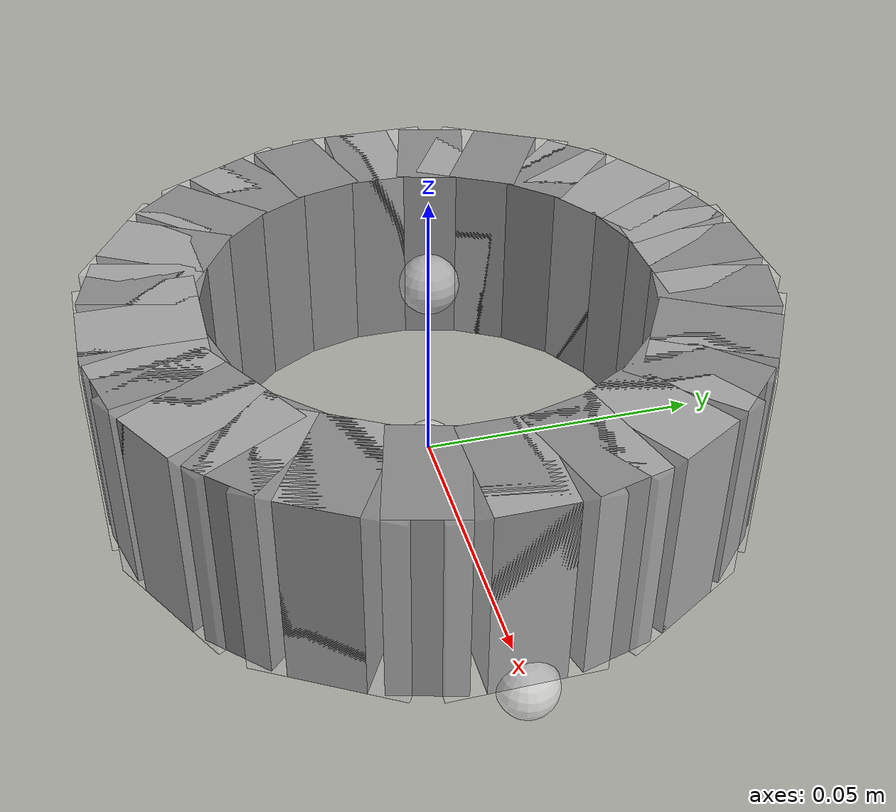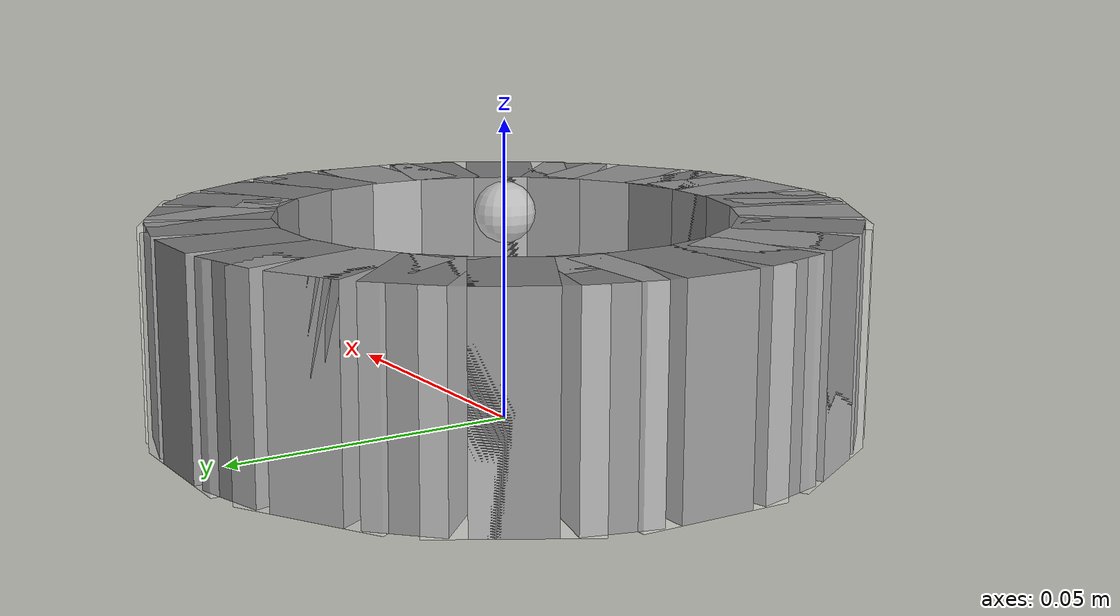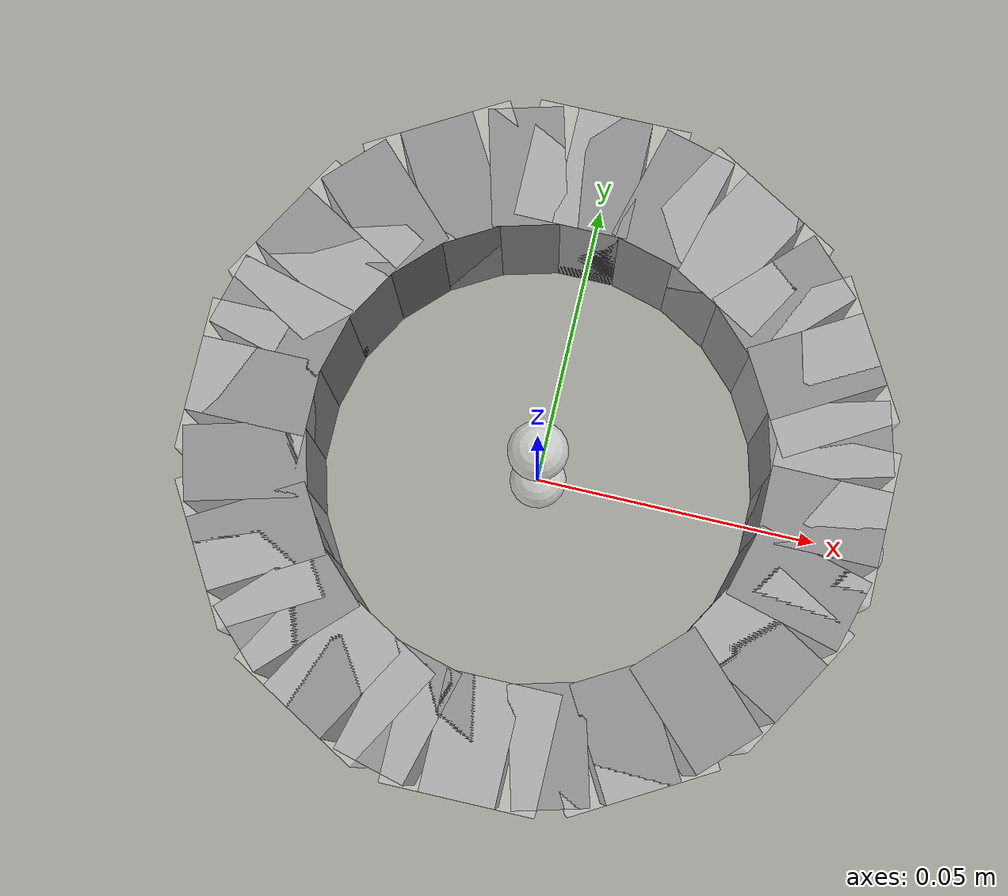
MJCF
<mujoco model="tape_roll">
  <default>
    <default class="visual">
      <geom group="1" contype="0" conaffinity="0" density="0"/>
    </default>
    <default class="collision">
      <geom group="0" density="350" solimp="0.95 0.98 0.001" solref="0.004 1" rgba="1 1 1 0.25" friction="1.2 0.01 0.001"/>
    </default>
    <default class="spawn">
      <geom group="1" rgba="1 1 1 0" contype="0" conaffinity="0" density="0" mass="0"/>
    </default>
  </default>
  <asset>
    <material name="grey_mat" rgba="0.55 0.55 0.55 1" specular="0.35" shininess="0.2"/>
  </asset>
  <!-- Hollow cylindrical tape roll: outer dia 11.5 cm, inner dia 7.5 cm, height 3.5 cm -->
  <worldbody>
    <body>
      <body name="object">
        <geom class="visual" type="box" size="0.01000 0.00625 0.01750" pos="0.04750 0.00000 0.01750" quat="1.000000 0 0 0.000000" material="grey_mat"/>
        <geom class="visual" type="box" size="0.01000 0.00625 0.01750" pos="0.04588 0.01229 0.01750" quat="0.991445 0 0 0.130526" material="grey_mat"/>
        <geom class="visual" type="box" size="0.01000 0.00625 0.01750" pos="0.04114 0.02375 0.01750" quat="0.965926 0 0 0.258819" material="grey_mat"/>
        <geom class="visual" type="box" size="0.01000 0.00625 0.01750" pos="0.03359 0.03359 0.01750" quat="0.923880 0 0 0.382683" material="grey_mat"/>
        <geom class="visual" type="box" size="0.01000 0.00625 0.01750" pos="0.02375 0.04114 0.01750" quat="0.866025 0 0 0.500000" material="grey_mat"/>
        <geom class="visual" type="box" size="0.01000 0.00625 0.01750" pos="0.01229 0.04588 0.01750" quat="0.793353 0 0 0.608761" material="grey_mat"/>
        <geom class="visual" type="box" size="0.01000 0.00625 0.01750" pos="0.00000 0.04750 0.01750" quat="0.707107 0 0 0.707107" material="grey_mat"/>
        <geom class="visual" type="box" size="0.01000 0.00625 0.01750" pos="-0.01229 0.04588 0.01750" quat="0.608761 0 0 0.793353" material="grey_mat"/>
        <geom class="visual" type="box" size="0.01000 0.00625 0.01750" pos="-0.02375 0.04114 0.01750" quat="0.500000 0 0 0.866025" material="grey_mat"/>
        <geom class="visual" type="box" size="0.01000 0.00625 0.01750" pos="-0.03359 0.03359 0.01750" quat="0.382683 0 0 0.923880" material="grey_mat"/>
        <geom class="visual" type="box" size="0.01000 0.00625 0.01750" pos="-0.04114 0.02375 0.01750" quat="0.258819 0 0 0.965926" material="grey_mat"/>
        <geom class="visual" type="box" size="0.01000 0.00625 0.01750" pos="-0.04588 0.01229 0.01750" quat="0.130526 0 0 0.991445" material="grey_mat"/>
        <geom class="visual" type="box" size="0.01000 0.00625 0.01750" pos="-0.04750 0.00000 0.01750" quat="0.000000 0 0 1.000000" material="grey_mat"/>
        <geom class="visual" type="box" size="0.01000 0.00625 0.01750" pos="-0.04588 -0.01229 0.01750" quat="-0.130526 0 0 0.991445" material="grey_mat"/>
        <geom class="visual" type="box" size="0.01000 0.00625 0.01750" pos="-0.04114 -0.02375 0.01750" quat="-0.258819 0 0 0.965926" material="grey_mat"/>
        <geom class="visual" type="box" size="0.01000 0.00625 0.01750" pos="-0.03359 -0.03359 0.01750" quat="-0.382683 0 0 0.923880" material="grey_mat"/>
        <geom class="visual" type="box" size="0.01000 0.00625 0.01750" pos="-0.02375 -0.04114 0.01750" quat="-0.500000 0 0 0.866025" material="grey_mat"/>
        <geom class="visual" type="box" size="0.01000 0.00625 0.01750" pos="-0.01229 -0.04588 0.01750" quat="-0.608761 0 0 0.793353" material="grey_mat"/>
        <geom class="visual" type="box" size="0.01000 0.00625 0.01750" pos="-0.00000 -0.04750 0.01750" quat="-0.707107 0 0 0.707107" material="grey_mat"/>
        <geom class="visual" type="box" size="0.01000 0.00625 0.01750" pos="0.01229 -0.04588 0.01750" quat="-0.793353 0 0 0.608761" material="grey_mat"/>
        <geom class="visual" type="box" size="0.01000 0.00625 0.01750" pos="0.02375 -0.04114 0.01750" quat="-0.866025 0 0 0.500000" material="grey_mat"/>
        <geom class="visual" type="box" size="0.01000 0.00625 0.01750" pos="0.03359 -0.03359 0.01750" quat="-0.923880 0 0 0.382683" material="grey_mat"/>
        <geom class="visual" type="box" size="0.01000 0.00625 0.01750" pos="0.04114 -0.02375 0.01750" quat="-0.965926 0 0 0.258819" material="grey_mat"/>
        <geom class="visual" type="box" size="0.01000 0.00625 0.01750" pos="0.04588 -0.01229 0.01750" quat="-0.991445 0 0 0.130526" material="grey_mat"/>
        <geom class="collision" type="box" size="0.01000 0.01273 0.01750" pos="0.04750 0.00000 0.01750" quat="1.000000 0 0 0.000000" />
        <geom class="collision" type="box" size="0.01000 0.01273 0.01750" pos="0.04114 0.02375 0.01750" quat="0.965926 0 0 0.258819" />
        <geom class="collision" type="box" size="0.01000 0.01273 0.01750" pos="0.02375 0.04114 0.01750" quat="0.866025 0 0 0.500000" />
        <geom class="collision" type="box" size="0.01000 0.01273 0.01750" pos="0.00000 0.04750 0.01750" quat="0.707107 0 0 0.707107" />
        <geom class="collision" type="box" size="0.01000 0.01273 0.01750" pos="-0.02375 0.04114 0.01750" quat="0.500000 0 0 0.866025" />
        <geom class="collision" type="box" size="0.01000 0.01273 0.01750" pos="-0.04114 0.02375 0.01750" quat="0.258819 0 0 0.965926" />
        <geom class="collision" type="box" size="0.01000 0.01273 0.01750" pos="-0.04750 0.00000 0.01750" quat="0.000000 0 0 1.000000" />
        <geom class="collision" type="box" size="0.01000 0.01273 0.01750" pos="-0.04114 -0.02375 0.01750" quat="-0.258819 0 0 0.965926" />
        <geom class="collision" type="box" size="0.01000 0.01273 0.01750" pos="-0.02375 -0.04114 0.01750" quat="-0.500000 0 0 0.866025" />
        <geom class="collision" type="box" size="0.01000 0.01273 0.01750" pos="-0.00000 -0.04750 0.01750" quat="-0.707107 0 0 0.707107" />
        <geom class="collision" type="box" size="0.01000 0.01273 0.01750" pos="0.02375 -0.04114 0.01750" quat="-0.866025 0 0 0.500000" />
        <geom class="collision" type="box" size="0.01000 0.01273 0.01750" pos="0.04114 -0.02375 0.01750" quat="-0.965926 0 0 0.258819" />
        <geom class="spawn" size="0.02 0.02 0.01" type="box" pos="0 0 0.040" name="spawn_top"/>
      </body>
      <site name="bottom_site" pos="0 0 0" rgba="1 1 1 0.5" size="0.005"/>
      <site name="top_site" pos="0 0 0.035" rgba="1 1 1 0.5" size="0.005"/>
      <site name="horizontal_radius_site" pos="0.0575 0 0" rgba="1 1 1 0.5" size="0.005"/>
    </body>
  </worldbody>
</mujoco>
